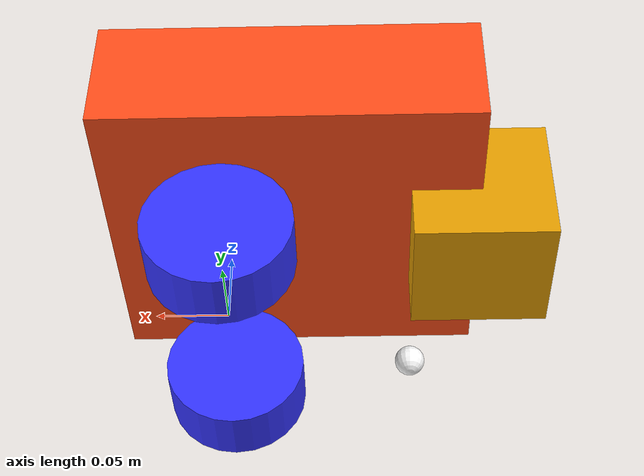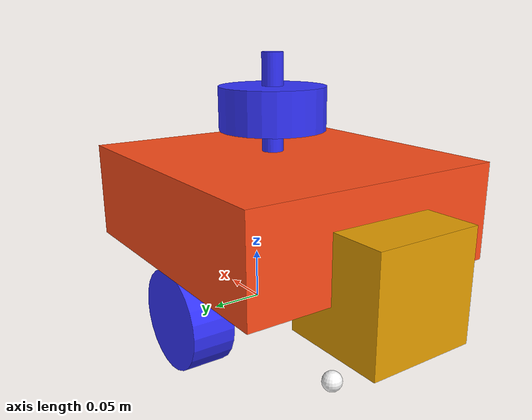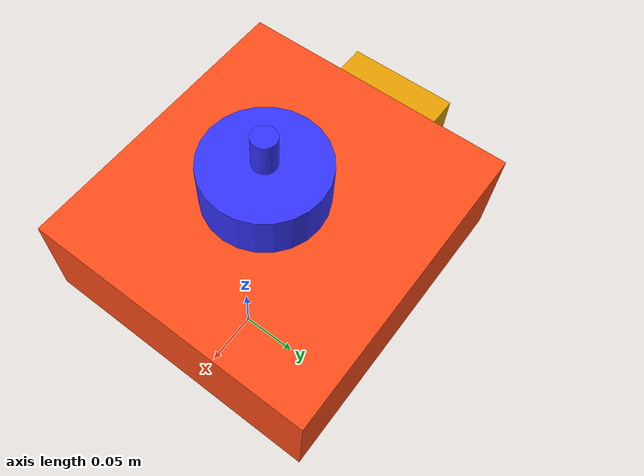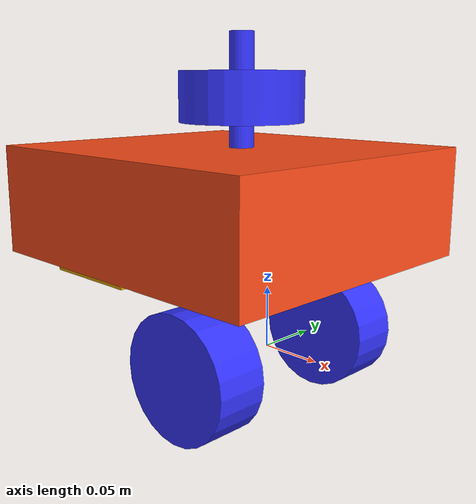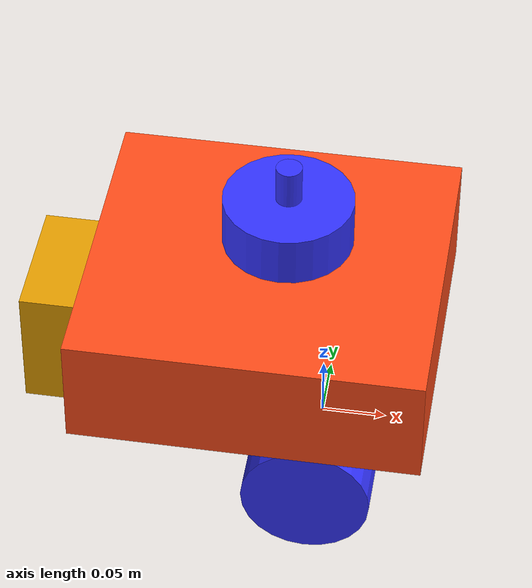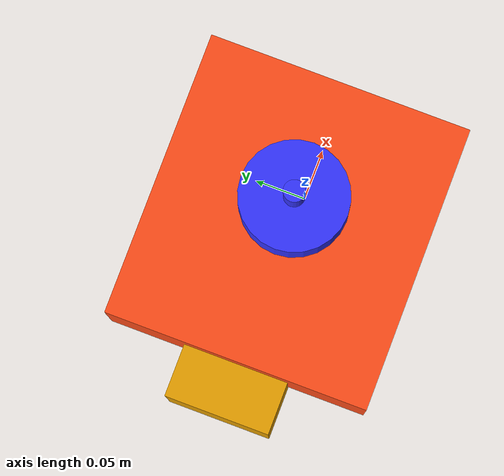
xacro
<?xml version="1.0"?>
<!-- Basic differential drive mobile base -->
<robot xmlns:xacro="http://www.ros.org/wiki/xacro" name="diffdrive_robot">

  <xacro:arg name="prefix" default="" />
  <xacro:arg name="use_ros2_control" default="true"/>
  <xacro:arg name="sim_mode" default="false"/>

  <xacro:include filename="$(find diffdrive_ddsm115)/urdf/inertial_macros.xacro"/>
  <xacro:include filename="robot_core.xacro" />

  <xacro:include filename="$(find diffdrive_ddsm115)/urdf/imu.xacro" />
  <xacro:include filename="$(find diffdrive_ddsm115)/urdf/lidar.xacro" />

  <!-- Import Rviz colors -->

  <!-- Import diffbot ros2_control description -->
  <xacro:if value="$(arg use_ros2_control)">
    <xacro:include filename="$(find diffdrive_ddsm115)/ros2_control/diffbot.ros2_control.xacro" />
  </xacro:if>
  <xacro:unless value="$(arg use_ros2_control)">
    <xacro:include filename="$(find diffdrive_ddsm115)/ros2_control/gazebo.ros2_control.xacro" />
  </xacro:unless>

  <xacro:diffbot prefix="$(arg prefix)" />

  <xacro:diffbot_ros2_control
    name="DiffBot" prefix="$(arg prefix)" />

</robot>

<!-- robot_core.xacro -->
<robot xmlns:xacro="http://www.ros.org/wiki/xacro" >

    <xacro:macro name="diffbot" params="prefix">

    <xacro:include filename="inertial_macros.xacro"/>

    <xacro:property name="chassis_length" value="0.27"/>
    <xacro:property name="chassis_width" value="0.25"/>
    <xacro:property name="chassis_height" value="0.09"/>
    <xacro:property name="chassis_mass" value="1.0"/>
    <xacro:property name="wheel_radius" value="0.05035"/>
    <xacro:property name="wheel_thickness" value="0.043"/>
    <xacro:property name="wheel_mass" value="0.05"/>
    <xacro:property name="wheel_offset_x" value="-0.18"/>
    <xacro:property name="wheel_offset_y" value="0.08"/>
    <xacro:property name="wheel_offset_z" value="0.07"/>
    <xacro:property name="caster_wheel_radius" value="0.01"/>
    <xacro:property name="caster_wheel_mass" value="0.01"/>
    <xacro:property name="caster_wheel_offset_x" value="0.055"/>
    <xacro:property name="caster_wheel_offset_z" value="${-wheel_offset_z - wheel_radius + caster_wheel_radius}"/>

    <material name="white">
        <color rgba="1 1 1 1" />
    </material>

    <material name="orange">
        <color rgba="1 0.3 0.1 1"/>
    </material>

    <material name="blue">
        <color rgba="0.2 0.2 1 1"/>
    </material>

    <material name="black">
        <color rgba="0 0 0 1"/>
    </material>

    <material name="red">
        <color rgba="1 0 0 1"/>
    </material>

    <!-- BASE LINK -->

    <link name="base_link">
    </link>

    <!-- BASE_FOOTPRINT LINK -->

    <joint name="base_footprint_joint" type="fixed">
        <parent link="base_link"/>
        <child link="base_footprint"/>
        <origin xyz="0 0 0" rpy="0 0 0"/>
    </joint>

    <link name="base_footprint">
    </link>

    <!-- CHASSIS LINK -->

    <joint name="chassis_joint" type="fixed">
        <parent link="base_link"/>
        <child link="chassis"/>
        <origin xyz="${wheel_offset_x} 0 ${wheel_offset_z}"/>
    </joint>

    <link name="chassis">
        <visual>
            <origin xyz="${chassis_length/2} 0 ${chassis_height/2}"/>
            <geometry>
                <box size="${chassis_length} ${chassis_width} ${chassis_height}"/>
            </geometry>
            <material name="orange"/>
        </visual>
        <collision>
            <origin xyz="${chassis_length/2} 0 ${chassis_height/2}"/>
            <geometry>
                <box size="${chassis_length} ${chassis_width} ${chassis_height}"/>
            </geometry>
        </collision>
        <xacro:inertial_box mass="0.5" x="${chassis_length}" y="${chassis_width}" z="${chassis_height}">
            <origin xyz="${chassis_length/2} 0 ${chassis_height/2}" rpy="0 0 0"/>
        </xacro:inertial_box>
    </link>

    <gazebo reference="chassis">
        <material>Gazebo/Orange</material>
    </gazebo>

    <!-- LEFT WHEEL LINK -->

    <joint name="left_wheel_joint" type="continuous">
        <parent link="base_link"/>
        <child link="left_wheel"/>
        <origin xyz="0 ${wheel_offset_y} 0" rpy="-${pi/2} 0 0" />
        <axis xyz="0 0 1"/>
    </joint>

    <link name="left_wheel">
        <visual>
            <geometry>
                <cylinder radius="${wheel_radius}" length="${wheel_thickness}"/>
            </geometry>
            <material name="blue"/>
        </visual>
        <collision>
            <geometry>
                <sphere radius="${wheel_radius}"/>
            </geometry>
        </collision>
        <xacro:inertial_cylinder mass="${wheel_mass}" length="${wheel_thickness}" radius="${wheel_radius}">
            <origin xyz="0 0 0" rpy="0 0 0"/>
        </xacro:inertial_cylinder>
    </link>

    <gazebo reference="left_wheel">
        <material>Gazebo/Blue</material>
    </gazebo>

    <!-- RIGHT WHEEL LINK -->

    <joint name="right_wheel_joint" type="continuous">
        <parent link="base_link"/>
        <child link="right_wheel"/>
        <origin xyz="0 ${-wheel_offset_y} 0" rpy="${pi/2} 0 0" />
        <axis xyz="0 0 -1"/>
    </joint>

    <link name="right_wheel">
        <visual>
            <geometry>
                <cylinder radius="${wheel_radius}" length="${wheel_thickness}"/>
            </geometry>
            <material name="blue"/>
        </visual>
        <collision>
            <geometry>
                <sphere radius="${wheel_radius}"/>
            </geometry>
        </collision>
        <xacro:inertial_cylinder mass="${wheel_mass}" length="${wheel_thickness}" radius="${wheel_radius}">
            <origin xyz="0 0 0" rpy="0 0 0"/>
        </xacro:inertial_cylinder>
    </link>

    <gazebo reference="right_wheel">
        <material>Gazebo/Blue</material>
    </gazebo>

    <!-- CASTER WHEEL LINK -->

    <joint name="caster_wheel_joint" type="fixed">
        <parent link="chassis"/>
        <child link="caster_wheel"/>
        <origin xyz="${caster_wheel_offset_x} 0 ${caster_wheel_offset_z}"/>
    </joint>

    <link name="caster_wheel">
        <visual>
            <geometry>
                <sphere radius="${caster_wheel_radius}"/>
            </geometry>
            <material name="white"/>
        </visual>
        <collision>
            <geometry>
                <sphere radius="${caster_wheel_radius}"/>
            </geometry>
        </collision>
        <xacro:inertial_sphere mass="${caster_wheel_mass}" radius="${caster_wheel_radius}">
            <origin xyz="0 0 0" rpy="0 0 0"/>
        </xacro:inertial_sphere>
    </link>

    <gazebo reference="caster_wheel">
        <material>Gazebo/White</material>
        <mu1 value="0.001"/>
        <mu2 value="0.001"/>
    </gazebo>

    </xacro:macro>

</robot>

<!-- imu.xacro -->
<robot xmlns:xacro="http://www.ros.org/wiki/xacro" >

    <link name="imu_link">
        <visual>
            <geometry>
            <box size="0.1 0.1 0.1"/>
            </geometry>
        </visual>

        <collision>
            <geometry>
            <box size="0.1 0.1 0.1"/>
            </geometry>
        </collision>

        <xacro:inertial_box mass="0.01" x="0.02" y="0.02" z="0.02" >
            <origin xyz="0 0 0" rpy="0 0 0"/>
        </xacro:inertial_box>

        </link>

        <joint name="imu_joint" type="fixed">
        <parent link="chassis"/>
        <child link="imu_link"/>
        <origin xyz="0 0 0.01"/>
        </joint>

        <gazebo reference="imu_link">
        <sensor name="imu_sensor" type="imu">
        <plugin filename="libgazebo_ros_imu_sensor.so" name="imu_plugin">
            <ros>
                <namespace>/diffbot</namespace>
                <remapping>~/out:=imu</remapping>
            </ros>
            <initial_orientation_as_reference>false</initial_orientation_as_reference>
            </plugin>
            <always_on>true</always_on>
            <update_rate>100</update_rate>
            <visualize>true</visualize>
            <imu>
                <angular_velocity>
                    <x>
                    <noise type="gaussian">
                        <mean>0.0</mean>
                        <stddev>2e-4</stddev>
                        <bias_mean>0.0000075</bias_mean>
                        <bias_stddev>0.0000008</bias_stddev>
                    </noise>
                    </x>
                    <y>
                    <noise type="gaussian">
                        <mean>0.0</mean>
                        <stddev>2e-4</stddev>
                        <bias_mean>0.0000075</bias_mean>
                        <bias_stddev>0.0000008</bias_stddev>
                    </noise>
                    </y>
                    <z>
                    <noise type="gaussian">
                        <mean>0.0</mean>
                        <stddev>2e-4</stddev>
                        <bias_mean>0.0000075</bias_mean>
                        <bias_stddev>0.0000008</bias_stddev>
                    </noise>
                    </z>
                </angular_velocity>
                <linear_acceleration>
                    <x>
                    <noise type="gaussian">
                        <mean>0.0</mean>
                        <stddev>1.7e-2</stddev>
                        <bias_mean>0.1</bias_mean>
                        <bias_stddev>0.001</bias_stddev>
                    </noise>
                    </x>
                    <y>
                    <noise type="gaussian">
                        <mean>0.0</mean>
                        <stddev>1.7e-2</stddev>
                        <bias_mean>0.1</bias_mean>
                        <bias_stddev>0.001</bias_stddev>
                    </noise>
                    </y>
                    <z>
                    <noise type="gaussian">
                        <mean>0.0</mean>
                        <stddev>1.7e-2</stddev>
                        <bias_mean>0.1</bias_mean>
                        <bias_stddev>0.001</bias_stddev>
                    </noise>
                    </z>
                </linear_acceleration>
            </imu>
        </sensor>
        </gazebo>

</robot>

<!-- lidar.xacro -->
<robot xmlns:xacro="http://www.ros.org/wiki/xacro" >

    <xacro:property name="PI" value="3.1415926535897931"/>

    <joint name="laser_joint" type="fixed">
        <parent link="base_link"/>
        <child link="laser_frame"/>
        <origin xyz="-0.03 0 0.20" rpy="0 0 0"/>
    </joint>

    <link name="laser_frame">
        <visual>
            <geometry>
                <cylinder radius="0.05" length="0.04"/>
            </geometry>
            <material name="blue"/>
        </visual>
        <visual>
            <origin xyz="0 0 0.0"/>
            <geometry>
                <cylinder radius="0.01" length="0.1"/>
            </geometry>
            <material name="blue"/>
        </visual>
        <collision>
            <geometry>
                <cylinder radius="0.05" length="0.04"/>
            </geometry>
        </collision>
        <xacro:inertial_cylinder mass="0.1" length="0.04" radius="0.05">
            <origin xyz="0 0 0" rpy="0 0 0"/>
        </xacro:inertial_cylinder>
    </link>

    <gazebo reference="laser_frame">
        <material>Gazebo/Blue</material>

        <sensor name="laser" type="ray">
            <pose> 0 0 0 0 0 0 </pose>
            <visualize>false</visualize>
            <update_rate>10</update_rate>
            <ray>
                <scan>
                    <horizontal>
                        <samples>360</samples>
                        <min_angle>-3.14</min_angle>
                        <max_angle>3.14</max_angle>
                    </horizontal>
                </scan>
                <range>
                    <min>0.3</min>
                    <max>12</max>
                </range>
            </ray>
            <plugin name="laser_controller" filename="libgazebo_ros_ray_sensor.so">
                <ros>
                    <argument>~/out:=scan</argument>
                </ros>
                <output_type>sensor_msgs/LaserScan</output_type>
                <frame_name>laser_frame</frame_name>
            </plugin>
        </sensor>
    </gazebo>

</robot>
